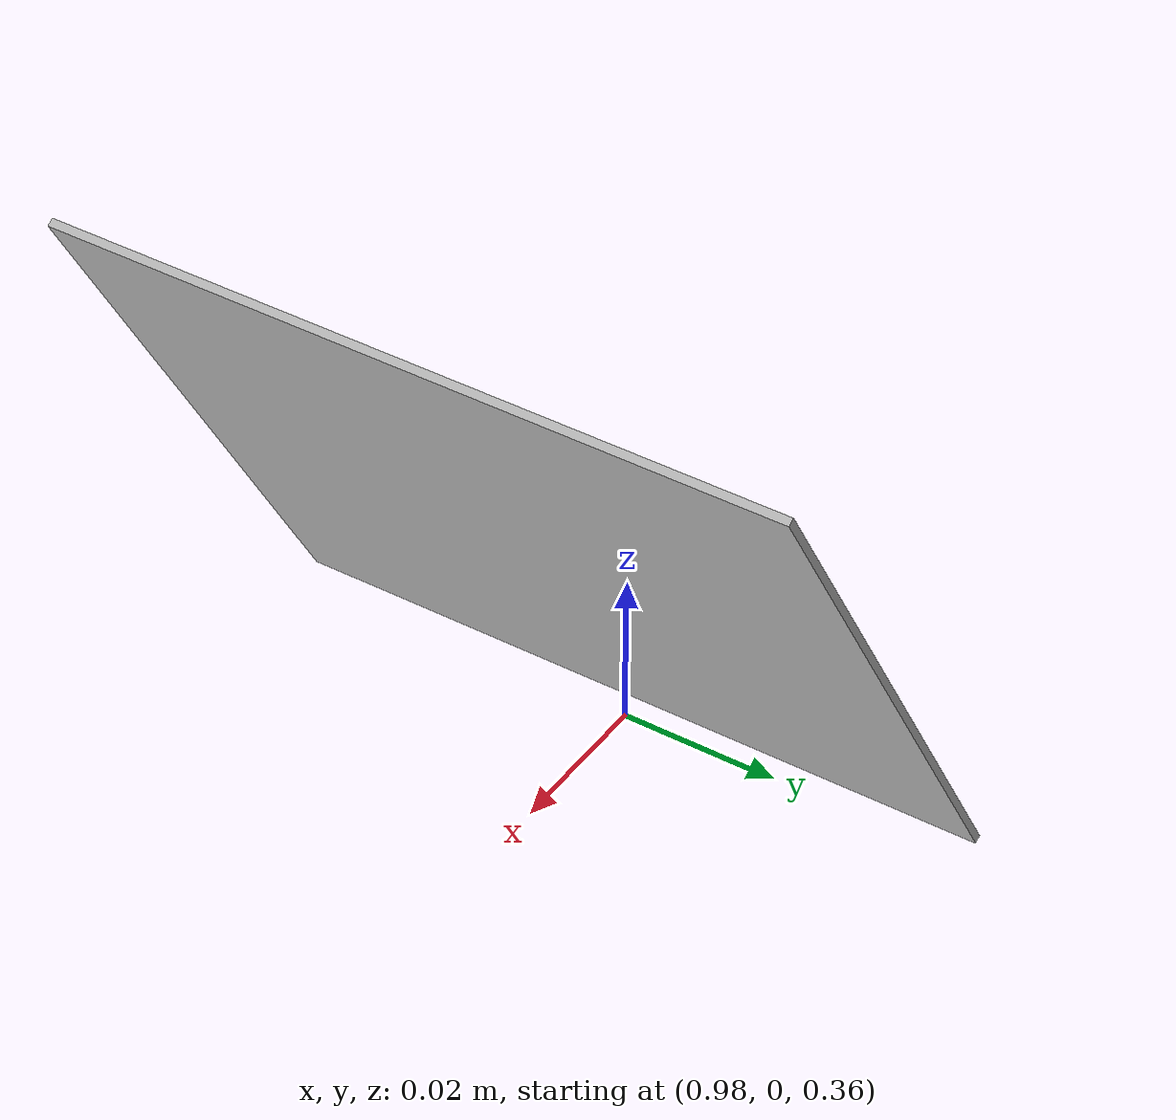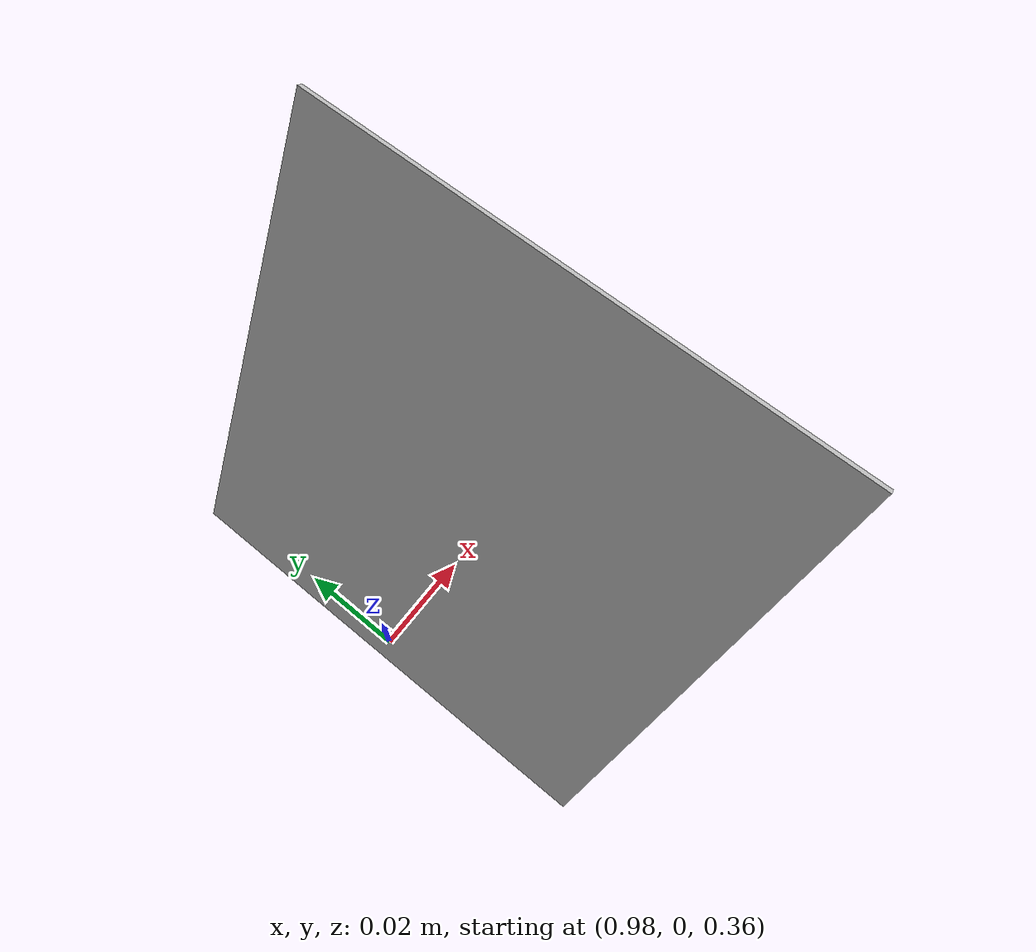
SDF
<?xml version="1.0" ?>
<sdf version="1.4">
  <world name="maze">
    <physics type="ode">
      <gravity>0 0 -9.81</gravity>
      <ode>
        <solver>
          <type>quick</type>
          <iters>50</iters>
          <sor>1.4</sor>
        </solver>
        <constraints>
          <cfm>0.0</cfm>
          <erp>0.2</erp>
          <contact_max_correcting_vel>100.0</contact_max_correcting_vel>
          <contact_surface_layer>0.0</contact_surface_layer>
        </constraints>
      </ode>
      <real_time_update_rate>1000</real_time_update_rate>
      <max_step_size>0.001</max_step_size>
    </physics>
    <scene>
      <ambient>0.3 0.3 0.3 1.0</ambient>
    </scene>
    <!-- Focus camera on the maze -->
    <gui fullscreen='0'>
      <camera name='user_camera'>
        <pose>0 0 35 0 1.570796327 0</pose>
        <view_controller>orbit</view_controller>
      </camera>
    </gui>
    <!-- Light Source -->
    <light type="directional" name="sun">
      <cast_shadows>true</cast_shadows>
      <pose>0 0 100 0 0 0</pose>
      <diffuse>0.9 0.9 0.9 1</diffuse>
      <specular>0.1 0.1 0.1 1</specular>
      <attenuation>
        <range>1000</range>
        <constant>0.9</constant>
        <linear>0.01</linear>
        <quadratic>0.001</quadratic>
      </attenuation>
      <direction>-0.2 0.0 -1.0</direction>
    </light>
    <!-- Point Light Source -->
    <light type="point" name="light_bulb">
      <cast_shadows>false</cast_shadows>
      <pose>0 0 10 0 0 0</pose>
      <diffuse>0.5 0.5 0.5 1</diffuse>
      <specular>0.0 0.0 0.0 1</specular>
      <attenuation>
        <range>80</range>
        <constant>0.9</constant>
        <linear>0.01</linear>
        <quadratic>0.001</quadratic>
      </attenuation>
    </light>
    <!-- A ground plane -->
    <include>
      <uri>model://ground_plane</uri>
      <pose>0 0 0 0 0 0</pose>
    </include>
    <!-- Aruco marker -->
    <include>
      <uri>model://marker26_8cm</uri>
      <pose>1.0 0 0.4 0 2.1 0</pose>
    </include>
  </world>
</sdf>

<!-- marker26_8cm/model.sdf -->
<sdf version="1.6">
  <model name="marker26_8cm">
    <static>false</static>
    <link name="marker">
      <gravity>false</gravity>
      <visual name="visual">
        <geometry>
          <box>
            <size>0.09 0.09 0.001</size>
          </box>
        </geometry>
        <material>
          <script>
            <uri>model://marker26_8cm/material/scripts</uri>
            <uri>model://marker26_8cm/material/textures</uri>
            <name>Aruco/marker26_8cm</name>
          </script>
        </material>
      </visual>
    </link>
  </model>
</sdf>
